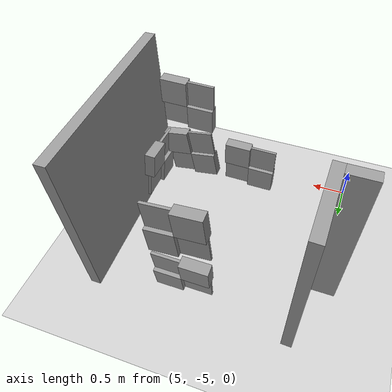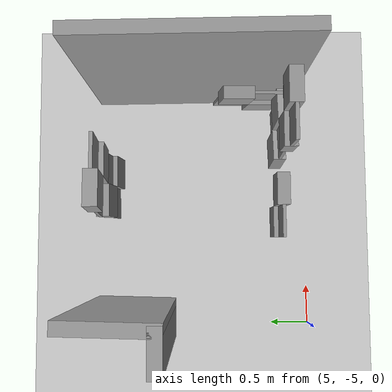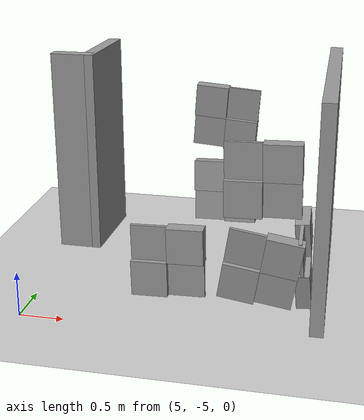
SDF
<sdf version="1.7">
 <world name="default">
  <model name="demo_clean">
   <static>1</static>
   <link name="Wall_15">
    <collision name="Wall_15_Collision">
     <geometry><box><size>2.6816 0.15 2.5</size></box></geometry>
     <pose>0 0 1.25 0 -0 0</pose>
     <surface>
      <friction>
       <ode><mu>1</mu><mu2>1</mu2><fdir1>0 0 0</fdir1><slip1>0</slip1><slip2>0</slip2></ode>
       <torsional>
        <coefficient>1</coefficient>
        <patch_radius>0</patch_radius>
        <surface_radius>0</surface_radius>
        <use_patch_radius>1</use_patch_radius>
        <ode><slip>0</slip></ode>
       </torsional>
      </friction>
      <bounce><restitution_coefficient>0</restitution_coefficient><threshold>1e+06</threshold></bounce>
      <contact>
       <collide_without_contact>0</collide_without_contact>
       <collide_without_contact_bitmask>1</collide_without_contact_bitmask>
       <collide_bitmask>1</collide_bitmask>
       <ode>
        <soft_cfm>0</soft_cfm>
        <soft_erp>0.2</soft_erp>
        <kp>1e+13</kp>
        <kd>1</kd>
        <max_vel>0.01</max_vel>
        <min_depth>0</min_depth>
       </ode>
       <bullet>
        <split_impulse>1</split_impulse>
        <split_impulse_penetration_threshold>-0.01</split_impulse_penetration_threshold>
        <soft_cfm>0</soft_cfm>
        <soft_erp>0.2</soft_erp>
        <kp>1e+13</kp>
        <kd>1</kd>
       </bullet>
      </contact>
     </surface>
    </collision>
    <visual name="Wall_15_Visual">
     <geometry><box><size>2.6816 0.15 2.5</size></box></geometry>
     <material>
      <script><name>Gazebo/Grey</name><uri>file://media/materials/scripts/gazebo.material</uri></script>
      <ambient>1 1 1 1</ambient>
      <shader type="pixel"><normal_map>default</normal_map></shader>
     </material>
     <pose>0 0 1.25 0 -0 0</pose>
    </visual>
    <pose>8.16988 -3.47452 0 0 0 -1.55787</pose>
   </link>
   <link name="Wall_41">
    <collision name="Wall_41_Collision">
     <geometry><box><size>0.5 0.15 2.5</size></box></geometry>
     <pose>0 0 1.25 0 -0 0</pose>
     <surface>
      <friction>
       <ode><mu>1</mu><mu2>1</mu2><fdir1>0 0 0</fdir1><slip1>0</slip1><slip2>0</slip2></ode>
       <torsional>
        <coefficient>1</coefficient>
        <patch_radius>0</patch_radius>
        <surface_radius>0</surface_radius>
        <use_patch_radius>1</use_patch_radius>
        <ode><slip>0</slip></ode>
       </torsional>
      </friction>
      <bounce><restitution_coefficient>0</restitution_coefficient><threshold>1e+06</threshold></bounce>
      <contact>
       <collide_without_contact>0</collide_without_contact>
       <collide_without_contact_bitmask>1</collide_without_contact_bitmask>
       <collide_bitmask>1</collide_bitmask>
       <ode>
        <soft_cfm>0</soft_cfm>
        <soft_erp>0.2</soft_erp>
        <kp>1e+13</kp>
        <kd>1</kd>
        <max_vel>0.01</max_vel>
        <min_depth>0</min_depth>
       </ode>
       <bullet>
        <split_impulse>1</split_impulse>
        <split_impulse_penetration_threshold>-0.01</split_impulse_penetration_threshold>
        <soft_cfm>0</soft_cfm>
        <soft_erp>0.2</soft_erp>
        <kp>1e+13</kp>
        <kd>1</kd>
       </bullet>
      </contact>
     </surface>
    </collision>
    <visual name="Wall_41_Visual">
     <geometry><box><size>0.5 0.15 2.5</size></box></geometry>
     <material>
      <script><name>Gazebo/Grey</name><uri>file://media/materials/scripts/gazebo.material</uri></script>
      <ambient>1 1 1 1</ambient>
      <shader type="pixel"><normal_map>default</normal_map></shader>
     </material>
     <pose>0 0 1.25 0 -0 0</pose>
    </visual>
    <pose>5.06619 -3.11573 0 0 -0 0</pose>
   </link>
   <link name="Wall_42">
    <collision name="Wall_42_Collision">
     <geometry><box><size>1.05905 0.15 2.5</size></box></geometry>
     <pose>0 0 1.25 0 -0 0</pose>
     <surface>
      <friction>
       <ode><mu>1</mu><mu2>1</mu2><fdir1>0 0 0</fdir1><slip1>0</slip1><slip2>0</slip2></ode>
       <torsional>
        <coefficient>1</coefficient>
        <patch_radius>0</patch_radius>
        <surface_radius>0</surface_radius>
        <use_patch_radius>1</use_patch_radius>
        <ode><slip>0</slip></ode>
       </torsional>
      </friction>
      <bounce><restitution_coefficient>0</restitution_coefficient><threshold>1e+06</threshold></bounce>
      <contact>
       <collide_without_contact>0</collide_without_contact>
       <collide_without_contact_bitmask>1</collide_without_contact_bitmask>
       <collide_bitmask>1</collide_bitmask>
       <ode>
        <soft_cfm>0</soft_cfm>
        <soft_erp>0.2</soft_erp>
        <kp>1e+13</kp>
        <kd>1</kd>
        <max_vel>0.01</max_vel>
        <min_depth>0</min_depth>
       </ode>
       <bullet>
        <split_impulse>1</split_impulse>
        <split_impulse_penetration_threshold>-0.01</split_impulse_penetration_threshold>
        <soft_cfm>0</soft_cfm>
        <soft_erp>0.2</soft_erp>
        <kp>1e+13</kp>
        <kd>1</kd>
       </bullet>
      </contact>
     </surface>
    </collision>
    <visual name="Wall_42_Visual">
     <geometry><box><size>1.05905 0.15 2.5</size></box></geometry>
     <material>
      <script><name>Gazebo/Grey</name><uri>file://media/materials/scripts/gazebo.material</uri></script>
      <ambient>1 1 1 1</ambient>
      <shader type="pixel"><normal_map>default</normal_map></shader>
     </material>
     <pose>0 0 1.25 0 -0 0</pose>
    </visual>
    <pose>5.28364 -2.66264 0 0 -0 1.53905</pose>
   </link>
  </model>
  <model name="ground_plane">
   <static>1</static>
   <link name="link">
    <collision name="collision">
     <geometry><plane><normal>0 0 1</normal><size>100 100</size></plane></geometry>
     <surface>
      <contact><collide_bitmask>65535</collide_bitmask></contact>
      <friction><ode><mu>100</mu><mu2>50</mu2></ode></friction>
     </surface>
    </collision>
    <visual name="visual">
     <cast_shadows>0</cast_shadows>
     <geometry><plane><normal>0 0 1</normal><size>100 100</size></plane></geometry>
     <material>
      <script><uri>file://media/materials/scripts/gazebo.material</uri><name>Gazebo/Grey</name></script>
     </material>
    </visual>
   </link>
  </model>
  <model name="wall_slate_5">
   <static>1</static>
   <link name="link_0">
    <inertial><mass>1</mass></inertial>
    <gravity>0</gravity>
    <visual name="visual">
     <pose>0 0.2 0.2 0 -0 0</pose>
     <geometry><box><size>0.16 0.4 0.4</size></box></geometry>
     <material>
      <lighting>1</lighting>
      <script><uri>file://media/materials/scripts/gazebo.material</uri><name>Gazebo/Grey</name></script>
      <shader type="pixel"><normal_map>__default__</normal_map></shader>
      <ambient>0.3 0.3 0.3 1</ambient>
      <diffuse>0.7 0.7 0.7 1</diffuse>
      <specular>0.01 0.01 0.01 1</specular>
      <emissive>0 0 0 1</emissive>
     </material>
    </visual>
    <visual name="ModelPreview_0::link_0::visual_1">
     <pose>0 0.2 -0.2 0 -0 0</pose>
     <geometry><box><size>0.04 0.4 0.4</size></box></geometry>
     <material>
      <lighting>1</lighting>
      <script><uri>file://media/materials/scripts/gazebo.material</uri><name>Gazebo/Grey</name></script>
      <shader type="pixel"><normal_map>__default__</normal_map></shader>
      <ambient>0.3 0.3 0.3 1</ambient>
      <diffuse>0.7 0.7 0.7 1</diffuse>
      <specular>0.01 0.01 0.01 1</specular>
      <emissive>0 0 0 1</emissive>
     </material>
    </visual>
    <visual name="ModelPreview_0::link_0::visual_2">
     <pose>0 -0.2 0.2 0 -0 0</pose>
     <geometry><box><size>0.04 0.4 0.4</size></box></geometry>
     <material>
      <lighting>1</lighting>
      <script><uri>file://media/materials/scripts/gazebo.material</uri><name>Gazebo/Grey</name></script>
      <shader type="pixel"><normal_map>__default__</normal_map></shader>
      <ambient>0.3 0.3 0.3 1</ambient>
      <diffuse>0.7 0.7 0.7 1</diffuse>
      <specular>0.01 0.01 0.01 1</specular>
      <emissive>0 0 0 1</emissive>
     </material>
    </visual>
    <visual name="ModelPreview_0::link_0::visual_3">
     <pose>0 -0.2 -0.2 0 -0 0</pose>
     <geometry><box><size>0.16 0.4 0.4</size></box></geometry>
     <material>
      <lighting>1</lighting>
      <script><uri>file://media/materials/scripts/gazebo.material</uri><name>Gazebo/Grey</name></script>
      <shader type="pixel"><normal_map>__default__</normal_map></shader>
      <ambient>0.3 0.3 0.3 1</ambient>
      <diffuse>0.7 0.7 0.7 1</diffuse>
      <specular>0.01 0.01 0.01 1</specular>
      <emissive>0 0 0 1</emissive>
     </material>
    </visual>
    <collision name="collision_2">
     <pose>0 -0.2 0.2 0 -0 0</pose>
     <geometry><box><size>0.04 0.4 0.4</size></box></geometry>
     <surface>
      <friction>
       <ode><mu>1</mu><mu2>1</mu2><fdir1>0 0 0</fdir1><slip1>0</slip1><slip2>0</slip2></ode>
       <torsional>
        <coefficient>1</coefficient>
        <patch_radius>0</patch_radius>
        <surface_radius>0</surface_radius>
        <use_patch_radius>1</use_patch_radius>
        <ode><slip>0</slip></ode>
       </torsional>
      </friction>
      <bounce><restitution_coefficient>0</restitution_coefficient><threshold>1e+06</threshold></bounce>
      <contact>
       <collide_without_contact>0</collide_without_contact>
       <collide_without_contact_bitmask>1</collide_without_contact_bitmask>
       <collide_bitmask>1</collide_bitmask>
       <ode>
        <soft_cfm>0</soft_cfm>
        <soft_erp>0.2</soft_erp>
        <kp>1e+13</kp>
        <kd>1</kd>
        <max_vel>0.01</max_vel>
        <min_depth>0</min_depth>
       </ode>
       <bullet>
        <split_impulse>1</split_impulse>
        <split_impulse_penetration_threshold>-0.01</split_impulse_penetration_threshold>
        <soft_cfm>0</soft_cfm>
        <soft_erp>0.2</soft_erp>
        <kp>1e+13</kp>
        <kd>1</kd>
       </bullet>
      </contact>
     </surface>
    </collision>
    <collision name="collision_1">
     <pose>0 0.2 -0.2 0 -0 0</pose>
     <geometry><box><size>0.04 0.4 0.4</size></box></geometry>
     <surface>
      <friction>
       <ode><mu>1</mu><mu2>1</mu2><fdir1>0 0 0</fdir1><slip1>0</slip1><slip2>0</slip2></ode>
       <torsional>
        <coefficient>1</coefficient>
        <patch_radius>0</patch_radius>
        <surface_radius>0</surface_radius>
        <use_patch_radius>1</use_patch_radius>
        <ode><slip>0</slip></ode>
       </torsional>
      </friction>
      <bounce><restitution_coefficient>0</restitution_coefficient><threshold>1e+06</threshold></bounce>
      <contact>
       <collide_without_contact>0</collide_without_contact>
       <collide_without_contact_bitmask>1</collide_without_contact_bitmask>
       <collide_bitmask>1</collide_bitmask>
       <ode>
        <soft_cfm>0</soft_cfm>
        <soft_erp>0.2</soft_erp>
        <kp>1e+13</kp>
        <kd>1</kd>
        <max_vel>0.01</max_vel>
        <min_depth>0</min_depth>
       </ode>
       <bullet>
        <split_impulse>1</split_impulse>
        <split_impulse_penetration_threshold>-0.01</split_impulse_penetration_threshold>
        <soft_cfm>0</soft_cfm>
        <soft_erp>0.2</soft_erp>
        <kp>1e+13</kp>
        <kd>1</kd>
       </bullet>
      </contact>
     </surface>
    </collision>
    <collision name="collision_4">
     <pose>0 0.2 0.2 0 -0 0</pose>
     <geometry><box><size>0.16 0.4 0.4</size></box></geometry>
     <surface>
      <friction>
       <ode><mu>1</mu><mu2>1</mu2><fdir1>0 0 0</fdir1><slip1>0</slip1><slip2>0</slip2></ode>
       <torsional>
        <coefficient>1</coefficient>
        <patch_radius>0</patch_radius>
        <surface_radius>0</surface_radius>
        <use_patch_radius>1</use_patch_radius>
        <ode><slip>0</slip></ode>
       </torsional>
      </friction>
      <bounce><restitution_coefficient>0</restitution_coefficient><threshold>1e+06</threshold></bounce>
      <contact>
       <collide_without_contact>0</collide_without_contact>
       <collide_without_contact_bitmask>1</collide_without_contact_bitmask>
       <collide_bitmask>1</collide_bitmask>
       <ode>
        <soft_cfm>0</soft_cfm>
        <soft_erp>0.2</soft_erp>
        <kp>1e+13</kp>
        <kd>1</kd>
        <max_vel>0.01</max_vel>
        <min_depth>0</min_depth>
       </ode>
       <bullet>
        <split_impulse>1</split_impulse>
        <split_impulse_penetration_threshold>-0.01</split_impulse_penetration_threshold>
        <soft_cfm>0</soft_cfm>
        <soft_erp>0.2</soft_erp>
        <kp>1e+13</kp>
        <kd>1</kd>
       </bullet>
      </contact>
     </surface>
    </collision>
    <collision name="collision_3">
     <pose>0 -0.2 -0.2 0 -0 0</pose>
     <geometry><box><size>0.16 0.4 0.4</size></box></geometry>
     <surface>
      <friction>
       <ode><mu>1</mu><mu2>1</mu2><fdir1>0 0 0</fdir1><slip1>0</slip1><slip2>0</slip2></ode>
       <torsional>
        <coefficient>1</coefficient>
        <patch_radius>0</patch_radius>
        <surface_radius>0</surface_radius>
        <use_patch_radius>1</use_patch_radius>
        <ode><slip>0</slip></ode>
       </torsional>
      </friction>
      <bounce><restitution_coefficient>0</restitution_coefficient><threshold>1e+06</threshold></bounce>
      <contact>
       <collide_without_contact>0</collide_without_contact>
       <collide_without_contact_bitmask>1</collide_without_contact_bitmask>
       <collide_bitmask>1</collide_bitmask>
       <ode>
        <soft_cfm>0</soft_cfm>
        <soft_erp>0.2</soft_erp>
        <kp>1e+13</kp>
        <kd>1</kd>
        <max_vel>0.01</max_vel>
        <min_depth>0</min_depth>
       </ode>
       <bullet>
        <split_impulse>1</split_impulse>
        <split_impulse_penetration_threshold>-0.01</split_impulse_penetration_threshold>
        <soft_cfm>0</soft_cfm>
        <soft_erp>0.2</soft_erp>
        <kp>1e+13</kp>
        <kd>1</kd>
       </bullet>
      </contact>
     </surface>
    </collision>
   </link>
   <pose>7.98585 -4.1722 0.6 0.14 -0.08 0.01783</pose>
  </model>
  <model name="wall_slate_17">
   <static>1</static>
   <link name="link_0">
    <inertial><mass>1</mass></inertial>
    <gravity>0</gravity>
    <visual name="visual">
     <pose>0 0.2 0.2 0 -0 0</pose>
     <geometry><box><size>0.16 0.4 0.4</size></box></geometry>
     <material>
      <lighting>1</lighting>
      <script><uri>file://media/materials/scripts/gazebo.material</uri><name>Gazebo/Grey</name></script>
      <shader type="pixel"><normal_map>__default__</normal_map></shader>
      <ambient>0.3 0.3 0.3 1</ambient>
      <diffuse>0.7 0.7 0.7 1</diffuse>
      <specular>0.01 0.01 0.01 1</specular>
      <emissive>0 0 0 1</emissive>
     </material>
    </visual>
    <visual name="ModelPreview_0::link_0::visual_1">
     <pose>0 0.2 -0.2 0 -0 0</pose>
     <geometry><box><size>0.04 0.4 0.4</size></box></geometry>
     <material>
      <lighting>1</lighting>
      <script><uri>file://media/materials/scripts/gazebo.material</uri><name>Gazebo/Grey</name></script>
      <shader type="pixel"><normal_map>__default__</normal_map></shader>
      <ambient>0.3 0.3 0.3 1</ambient>
      <diffuse>0.7 0.7 0.7 1</diffuse>
      <specular>0.01 0.01 0.01 1</specular>
      <emissive>0 0 0 1</emissive>
     </material>
    </visual>
    <visual name="ModelPreview_0::link_0::visual_2">
     <pose>0 -0.2 0.2 0 -0 0</pose>
     <geometry><box><size>0.04 0.4 0.4</size></box></geometry>
     <material>
      <lighting>1</lighting>
      <script><uri>file://media/materials/scripts/gazebo.material</uri><name>Gazebo/Grey</name></script>
      <shader type="pixel"><normal_map>__default__</normal_map></shader>
      <ambient>0.3 0.3 0.3 1</ambient>
      <diffuse>0.7 0.7 0.7 1</diffuse>
      <specular>0.01 0.01 0.01 1</specular>
      <emissive>0 0 0 1</emissive>
     </material>
    </visual>
    <visual name="ModelPreview_0::link_0::visual_3">
     <pose>0 -0.2 -0.2 0 -0 0</pose>
     <geometry><box><size>0.16 0.4 0.4</size></box></geometry>
     <material>
      <lighting>1</lighting>
      <script><uri>file://media/materials/scripts/gazebo.material</uri><name>Gazebo/Grey</name></script>
      <shader type="pixel"><normal_map>__default__</normal_map></shader>
      <ambient>0.3 0.3 0.3 1</ambient>
      <diffuse>0.7 0.7 0.7 1</diffuse>
      <specular>0.01 0.01 0.01 1</specular>
      <emissive>0 0 0 1</emissive>
     </material>
    </visual>
    <collision name="collision_2">
     <pose>0 -0.2 0.2 0 -0 0</pose>
     <geometry><box><size>0.04 0.4 0.4</size></box></geometry>
     <surface>
      <friction>
       <ode><mu>1</mu><mu2>1</mu2><fdir1>0 0 0</fdir1><slip1>0</slip1><slip2>0</slip2></ode>
       <torsional>
        <coefficient>1</coefficient>
        <patch_radius>0</patch_radius>
        <surface_radius>0</surface_radius>
        <use_patch_radius>1</use_patch_radius>
        <ode><slip>0</slip></ode>
       </torsional>
      </friction>
      <bounce><restitution_coefficient>0</restitution_coefficient><threshold>1e+06</threshold></bounce>
      <contact>
       <collide_without_contact>0</collide_without_contact>
       <collide_without_contact_bitmask>1</collide_without_contact_bitmask>
       <collide_bitmask>1</collide_bitmask>
       <ode>
        <soft_cfm>0</soft_cfm>
        <soft_erp>0.2</soft_erp>
        <kp>1e+13</kp>
        <kd>1</kd>
        <max_vel>0.01</max_vel>
        <min_depth>0</min_depth>
       </ode>
       <bullet>
        <split_impulse>1</split_impulse>
        <split_impulse_penetration_threshold>-0.01</split_impulse_penetration_threshold>
        <soft_cfm>0</soft_cfm>
        <soft_erp>0.2</soft_erp>
        <kp>1e+13</kp>
        <kd>1</kd>
       </bullet>
      </contact>
     </surface>
    </collision>
    <collision name="collision_1">
     <pose>0 0.2 -0.2 0 -0 0</pose>
     <geometry><box><size>0.04 0.4 0.4</size></box></geometry>
     <surface>
      <friction>
       <ode><mu>1</mu><mu2>1</mu2><fdir1>0 0 0</fdir1><slip1>0</slip1><slip2>0</slip2></ode>
       <torsional>
        <coefficient>1</coefficient>
        <patch_radius>0</patch_radius>
        <surface_radius>0</surface_radius>
        <use_patch_radius>1</use_patch_radius>
        <ode><slip>0</slip></ode>
       </torsional>
      </friction>
      <bounce><restitution_coefficient>0</restitution_coefficient><threshold>1e+06</threshold></bounce>
      <contact>
       <collide_without_contact>0</collide_without_contact>
       <collide_without_contact_bitmask>1</collide_without_contact_bitmask>
       <collide_bitmask>1</collide_bitmask>
       <ode>
        <soft_cfm>0</soft_cfm>
        <soft_erp>0.2</soft_erp>
        <kp>1e+13</kp>
        <kd>1</kd>
        <max_vel>0.01</max_vel>
        <min_depth>0</min_depth>
       </ode>
       <bullet>
        <split_impulse>1</split_impulse>
        <split_impulse_penetration_threshold>-0.01</split_impulse_penetration_threshold>
        <soft_cfm>0</soft_cfm>
        <soft_erp>0.2</soft_erp>
        <kp>1e+13</kp>
        <kd>1</kd>
       </bullet>
      </contact>
     </surface>
    </collision>
    <collision name="collision_4">
     <pose>0 0.2 0.2 0 -0 0</pose>
     <geometry><box><size>0.16 0.4 0.4</size></box></geometry>
     <surface>
      <friction>
       <ode><mu>1</mu><mu2>1</mu2><fdir1>0 0 0</fdir1><slip1>0</slip1><slip2>0</slip2></ode>
       <torsional>
        <coefficient>1</coefficient>
        <patch_radius>0</patch_radius>
        <surface_radius>0</surface_radius>
        <use_patch_radius>1</use_patch_radius>
        <ode><slip>0</slip></ode>
       </torsional>
      </friction>
      <bounce><restitution_coefficient>0</restitution_coefficient><threshold>1e+06</threshold></bounce>
      <contact>
       <collide_without_contact>0</collide_without_contact>
       <collide_without_contact_bitmask>1</collide_without_contact_bitmask>
       <collide_bitmask>1</collide_bitmask>
       <ode>
        <soft_cfm>0</soft_cfm>
        <soft_erp>0.2</soft_erp>
        <kp>1e+13</kp>
        <kd>1</kd>
        <max_vel>0.01</max_vel>
        <min_depth>0</min_depth>
       </ode>
       <bullet>
        <split_impulse>1</split_impulse>
        <split_impulse_penetration_threshold>-0.01</split_impulse_penetration_threshold>
        <soft_cfm>0</soft_cfm>
        <soft_erp>0.2</soft_erp>
        <kp>1e+13</kp>
        <kd>1</kd>
       </bullet>
      </contact>
     </surface>
    </collision>
    <collision name="collision_3">
     <pose>0 -0.2 -0.2 0 -0 0</pose>
     <geometry><box><size>0.16 0.4 0.4</size></box></geometry>
     <surface>
      <friction>
       <ode><mu>1</mu><mu2>1</mu2><fdir1>0 0 0</fdir1><slip1>0</slip1><slip2>0</slip2></ode>
       <torsional>
        <coefficient>1</coefficient>
        <patch_radius>0</patch_radius>
        <surface_radius>0</surface_radius>
        <use_patch_radius>1</use_patch_radius>
        <ode><slip>0</slip></ode>
       </torsional>
      </friction>
      <bounce><restitution_coefficient>0</restitution_coefficient><threshold>1e+06</threshold></bounce>
      <contact>
       <collide_without_contact>0</collide_without_contact>
       <collide_without_contact_bitmask>1</collide_without_contact_bitmask>
       <collide_bitmask>1</collide_bitmask>
       <ode>
        <soft_cfm>0</soft_cfm>
        <soft_erp>0.2</soft_erp>
        <kp>1e+13</kp>
        <kd>1</kd>
        <max_vel>0.01</max_vel>
        <min_depth>0</min_depth>
       </ode>
       <bullet>
        <split_impulse>1</split_impulse>
        <split_impulse_penetration_threshold>-0.01</split_impulse_penetration_threshold>
        <soft_cfm>0</soft_cfm>
        <soft_erp>0.2</soft_erp>
        <kp>1e+13</kp>
        <kd>1</kd>
       </bullet>
      </contact>
     </surface>
    </collision>
   </link>
   <pose>7.56125 -4.5652 0.6 -0.16 0.06 -1.5659</pose>
  </model>
  <model name="wall_slate_27">
   <static>1</static>
   <link name="link_0">
    <inertial><mass>1</mass></inertial>
    <gravity>0</gravity>
    <visual name="visual">
     <pose>0 0.2 0.2 0 -0 0</pose>
     <geometry><box><size>0.16 0.4 0.4</size></box></geometry>
     <material>
      <lighting>1</lighting>
      <script><uri>file://media/materials/scripts/gazebo.material</uri><name>Gazebo/Grey</name></script>
      <shader type="pixel"><normal_map>__default__</normal_map></shader>
      <ambient>0.3 0.3 0.3 1</ambient>
      <diffuse>0.7 0.7 0.7 1</diffuse>
      <specular>0.01 0.01 0.01 1</specular>
      <emissive>0 0 0 1</emissive>
     </material>
    </visual>
    <visual name="ModelPreview_0::link_0::visual_1">
     <pose>0 0.2 -0.2 0 -0 0</pose>
     <geometry><box><size>0.04 0.4 0.4</size></box></geometry>
     <material>
      <lighting>1</lighting>
      <script><uri>file://media/materials/scripts/gazebo.material</uri><name>Gazebo/Grey</name></script>
      <shader type="pixel"><normal_map>__default__</normal_map></shader>
      <ambient>0.3 0.3 0.3 1</ambient>
      <diffuse>0.7 0.7 0.7 1</diffuse>
      <specular>0.01 0.01 0.01 1</specular>
      <emissive>0 0 0 1</emissive>
     </material>
    </visual>
    <visual name="ModelPreview_0::link_0::visual_2">
     <pose>0 -0.2 0.2 0 -0 0</pose>
     <geometry><box><size>0.04 0.4 0.4</size></box></geometry>
     <material>
      <lighting>1</lighting>
      <script><uri>file://media/materials/scripts/gazebo.material</uri><name>Gazebo/Grey</name></script>
      <shader type="pixel"><normal_map>__default__</normal_map></shader>
      <ambient>0.3 0.3 0.3 1</ambient>
      <diffuse>0.7 0.7 0.7 1</diffuse>
      <specular>0.01 0.01 0.01 1</specular>
      <emissive>0 0 0 1</emissive>
     </material>
    </visual>
    <visual name="ModelPreview_0::link_0::visual_3">
     <pose>0 -0.2 -0.2 0 -0 0</pose>
     <geometry><box><size>0.16 0.4 0.4</size></box></geometry>
     <material>
      <lighting>1</lighting>
      <script><uri>file://media/materials/scripts/gazebo.material</uri><name>Gazebo/Grey</name></script>
      <shader type="pixel"><normal_map>__default__</normal_map></shader>
      <ambient>0.3 0.3 0.3 1</ambient>
      <diffuse>0.7 0.7 0.7 1</diffuse>
      <specular>0.01 0.01 0.01 1</specular>
      <emissive>0 0 0 1</emissive>
     </material>
    </visual>
    <collision name="collision_2">
     <pose>0 -0.2 0.2 0 -0 0</pose>
     <geometry><box><size>0.04 0.4 0.4</size></box></geometry>
     <surface>
      <friction>
       <ode><mu>1</mu><mu2>1</mu2><fdir1>0 0 0</fdir1><slip1>0</slip1><slip2>0</slip2></ode>
       <torsional>
        <coefficient>1</coefficient>
        <patch_radius>0</patch_radius>
        <surface_radius>0</surface_radius>
        <use_patch_radius>1</use_patch_radius>
        <ode><slip>0</slip></ode>
       </torsional>
      </friction>
      <bounce><restitution_coefficient>0</restitution_coefficient><threshold>1e+06</threshold></bounce>
      <contact>
       <collide_without_contact>0</collide_without_contact>
       <collide_without_contact_bitmask>1</collide_without_contact_bitmask>
       <collide_bitmask>1</collide_bitmask>
       <ode>
        <soft_cfm>0</soft_cfm>
        <soft_erp>0.2</soft_erp>
        <kp>1e+13</kp>
        <kd>1</kd>
        <max_vel>0.01</max_vel>
        <min_depth>0</min_depth>
       </ode>
       <bullet>
        <split_impulse>1</split_impulse>
        <split_impulse_penetration_threshold>-0.01</split_impulse_penetration_threshold>
        <soft_cfm>0</soft_cfm>
        <soft_erp>0.2</soft_erp>
        <kp>1e+13</kp>
        <kd>1</kd>
       </bullet>
      </contact>
     </surface>
    </collision>
    <collision name="collision_1">
     <pose>0 0.2 -0.2 0 -0 0</pose>
     <geometry><box><size>0.04 0.4 0.4</size></box></geometry>
     <surface>
      <friction>
       <ode><mu>1</mu><mu2>1</mu2><fdir1>0 0 0</fdir1><slip1>0</slip1><slip2>0</slip2></ode>
       <torsional>
        <coefficient>1</coefficient>
        <patch_radius>0</patch_radius>
        <surface_radius>0</surface_radius>
        <use_patch_radius>1</use_patch_radius>
        <ode><slip>0</slip></ode>
       </torsional>
      </friction>
      <bounce><restitution_coefficient>0</restitution_coefficient><threshold>1e+06</threshold></bounce>
      <contact>
       <collide_without_contact>0</collide_without_contact>
       <collide_without_contact_bitmask>1</collide_without_contact_bitmask>
       <collide_bitmask>1</collide_bitmask>
       <ode>
        <soft_cfm>0</soft_cfm>
        <soft_erp>0.2</soft_erp>
        <kp>1e+13</kp>
        <kd>1</kd>
        <max_vel>0.01</max_vel>
        <min_depth>0</min_depth>
       </ode>
       <bullet>
        <split_impulse>1</split_impulse>
        <split_impulse_penetration_threshold>-0.01</split_impulse_penetration_threshold>
        <soft_cfm>0</soft_cfm>
        <soft_erp>0.2</soft_erp>
        <kp>1e+13</kp>
        <kd>1</kd>
       </bullet>
      </contact>
     </surface>
    </collision>
    <collision name="collision_4">
     <pose>0 0.2 0.2 0 -0 0</pose>
     <geometry><box><size>0.16 0.4 0.4</size></box></geometry>
     <surface>
      <friction>
       <ode><mu>1</mu><mu2>1</mu2><fdir1>0 0 0</fdir1><slip1>0</slip1><slip2>0</slip2></ode>
       <torsional>
        <coefficient>1</coefficient>
        <patch_radius>0</patch_radius>
        <surface_radius>0</surface_radius>
        <use_patch_radius>1</use_patch_radius>
        <ode><slip>0</slip></ode>
       </torsional>
      </friction>
      <bounce><restitution_coefficient>0</restitution_coefficient><threshold>1e+06</threshold></bounce>
      <contact>
       <collide_without_contact>0</collide_without_contact>
       <collide_without_contact_bitmask>1</collide_without_contact_bitmask>
       <collide_bitmask>1</collide_bitmask>
       <ode>
        <soft_cfm>0</soft_cfm>
        <soft_erp>0.2</soft_erp>
        <kp>1e+13</kp>
        <kd>1</kd>
        <max_vel>0.01</max_vel>
        <min_depth>0</min_depth>
       </ode>
       <bullet>
        <split_impulse>1</split_impulse>
        <split_impulse_penetration_threshold>-0.01</split_impulse_penetration_threshold>
        <soft_cfm>0</soft_cfm>
        <soft_erp>0.2</soft_erp>
        <kp>1e+13</kp>
        <kd>1</kd>
       </bullet>
      </contact>
     </surface>
    </collision>
    <collision name="collision_3">
     <pose>0 -0.2 -0.2 0 -0 0</pose>
     <geometry><box><size>0.16 0.4 0.4</size></box></geometry>
     <surface>
      <friction>
       <ode><mu>1</mu><mu2>1</mu2><fdir1>0 0 0</fdir1><slip1>0</slip1><slip2>0</slip2></ode>
       <torsional>
        <coefficient>1</coefficient>
        <patch_radius>0</patch_radius>
        <surface_radius>0</surface_radius>
        <use_patch_radius>1</use_patch_radius>
        <ode><slip>0</slip></ode>
       </torsional>
      </friction>
      <bounce><restitution_coefficient>0</restitution_coefficient><threshold>1e+06</threshold></bounce>
      <contact>
       <collide_without_contact>0</collide_without_contact>
       <collide_without_contact_bitmask>1</collide_without_contact_bitmask>
       <collide_bitmask>1</collide_bitmask>
       <ode>
        <soft_cfm>0</soft_cfm>
        <soft_erp>0.2</soft_erp>
        <kp>1e+13</kp>
        <kd>1</kd>
        <max_vel>0.01</max_vel>
        <min_depth>0</min_depth>
       </ode>
       <bullet>
        <split_impulse>1</split_impulse>
        <split_impulse_penetration_threshold>-0.01</split_impulse_penetration_threshold>
        <soft_cfm>0</soft_cfm>
        <soft_erp>0.2</soft_erp>
        <kp>1e+13</kp>
        <kd>1</kd>
       </bullet>
      </contact>
     </surface>
    </collision>
   </link>
   <pose>7.56125 -4.5652 1.6 0.02 -0 -1.5659</pose>
  </model>
  <model name="wall_slate_44">
   <static>1</static>
   <link name="link_0">
    <inertial><mass>1</mass></inertial>
    <gravity>0</gravity>
    <visual name="visual">
     <pose>0 0.2 0.2 0 -0 0</pose>
     <geometry><box><size>0.16 0.4 0.4</size></box></geometry>
     <material>
      <lighting>1</lighting>
      <script><uri>file://media/materials/scripts/gazebo.material</uri><name>Gazebo/Grey</name></script>
      <shader type="pixel"><normal_map>__default__</normal_map></shader>
      <ambient>0.3 0.3 0.3 1</ambient>
      <diffuse>0.7 0.7 0.7 1</diffuse>
      <specular>0.01 0.01 0.01 1</specular>
      <emissive>0 0 0 1</emissive>
     </material>
    </visual>
    <visual name="ModelPreview_0::link_0::visual_1">
     <pose>0 0.2 -0.2 0 -0 0</pose>
     <geometry><box><size>0.04 0.4 0.4</size></box></geometry>
     <material>
      <lighting>1</lighting>
      <script><uri>file://media/materials/scripts/gazebo.material</uri><name>Gazebo/Grey</name></script>
      <shader type="pixel"><normal_map>__default__</normal_map></shader>
      <ambient>0.3 0.3 0.3 1</ambient>
      <diffuse>0.7 0.7 0.7 1</diffuse>
      <specular>0.01 0.01 0.01 1</specular>
      <emissive>0 0 0 1</emissive>
     </material>
    </visual>
    <visual name="ModelPreview_0::link_0::visual_2">
     <pose>0 -0.2 0.2 0 -0 0</pose>
     <geometry><box><size>0.04 0.4 0.4</size></box></geometry>
     <material>
      <lighting>1</lighting>
      <script><uri>file://media/materials/scripts/gazebo.material</uri><name>Gazebo/Grey</name></script>
      <shader type="pixel"><normal_map>__default__</normal_map></shader>
      <ambient>0.3 0.3 0.3 1</ambient>
      <diffuse>0.7 0.7 0.7 1</diffuse>
      <specular>0.01 0.01 0.01 1</specular>
      <emissive>0 0 0 1</emissive>
     </material>
    </visual>
    <visual name="ModelPreview_0::link_0::visual_3">
     <pose>0 -0.2 -0.2 0 -0 0</pose>
     <geometry><box><size>0.16 0.4 0.4</size></box></geometry>
     <material>
      <lighting>1</lighting>
      <script><uri>file://media/materials/scripts/gazebo.material</uri><name>Gazebo/Grey</name></script>
      <shader type="pixel"><normal_map>__default__</normal_map></shader>
      <ambient>0.3 0.3 0.3 1</ambient>
      <diffuse>0.7 0.7 0.7 1</diffuse>
      <specular>0.01 0.01 0.01 1</specular>
      <emissive>0 0 0 1</emissive>
     </material>
    </visual>
    <collision name="collision_2">
     <pose>0 -0.2 0.2 0 -0 0</pose>
     <geometry><box><size>0.04 0.4 0.4</size></box></geometry>
     <surface>
      <friction>
       <ode><mu>1</mu><mu2>1</mu2><fdir1>0 0 0</fdir1><slip1>0</slip1><slip2>0</slip2></ode>
       <torsional>
        <coefficient>1</coefficient>
        <patch_radius>0</patch_radius>
        <surface_radius>0</surface_radius>
        <use_patch_radius>1</use_patch_radius>
        <ode><slip>0</slip></ode>
       </torsional>
      </friction>
      <bounce><restitution_coefficient>0</restitution_coefficient><threshold>1e+06</threshold></bounce>
      <contact>
       <collide_without_contact>0</collide_without_contact>
       <collide_without_contact_bitmask>1</collide_without_contact_bitmask>
       <collide_bitmask>1</collide_bitmask>
       <ode>
        <soft_cfm>0</soft_cfm>
        <soft_erp>0.2</soft_erp>
        <kp>1e+13</kp>
        <kd>1</kd>
        <max_vel>0.01</max_vel>
        <min_depth>0</min_depth>
       </ode>
       <bullet>
        <split_impulse>1</split_impulse>
        <split_impulse_penetration_threshold>-0.01</split_impulse_penetration_threshold>
        <soft_cfm>0</soft_cfm>
        <soft_erp>0.2</soft_erp>
        <kp>1e+13</kp>
        <kd>1</kd>
       </bullet>
      </contact>
     </surface>
    </collision>
    <collision name="collision_1">
     <pose>0 0.2 -0.2 0 -0 0</pose>
     <geometry><box><size>0.04 0.4 0.4</size></box></geometry>
     <surface>
      <friction>
       <ode><mu>1</mu><mu2>1</mu2><fdir1>0 0 0</fdir1><slip1>0</slip1><slip2>0</slip2></ode>
       <torsional>
        <coefficient>1</coefficient>
        <patch_radius>0</patch_radius>
        <surface_radius>0</surface_radius>
        <use_patch_radius>1</use_patch_radius>
        <ode><slip>0</slip></ode>
       </torsional>
      </friction>
      <bounce><restitution_coefficient>0</restitution_coefficient><threshold>1e+06</threshold></bounce>
      <contact>
       <collide_without_contact>0</collide_without_contact>
       <collide_without_contact_bitmask>1</collide_without_contact_bitmask>
       <collide_bitmask>1</collide_bitmask>
       <ode>
        <soft_cfm>0</soft_cfm>
        <soft_erp>0.2</soft_erp>
        <kp>1e+13</kp>
        <kd>1</kd>
        <max_vel>0.01</max_vel>
        <min_depth>0</min_depth>
       </ode>
       <bullet>
        <split_impulse>1</split_impulse>
        <split_impulse_penetration_threshold>-0.01</split_impulse_penetration_threshold>
        <soft_cfm>0</soft_cfm>
        <soft_erp>0.2</soft_erp>
        <kp>1e+13</kp>
        <kd>1</kd>
       </bullet>
      </contact>
     </surface>
    </collision>
    <collision name="collision_4">
     <pose>0 0.2 0.2 0 -0 0</pose>
     <geometry><box><size>0.16 0.4 0.4</size></box></geometry>
     <surface>
      <friction>
       <ode><mu>1</mu><mu2>1</mu2><fdir1>0 0 0</fdir1><slip1>0</slip1><slip2>0</slip2></ode>
       <torsional>
        <coefficient>1</coefficient>
        <patch_radius>0</patch_radius>
        <surface_radius>0</surface_radius>
        <use_patch_radius>1</use_patch_radius>
        <ode><slip>0</slip></ode>
       </torsional>
      </friction>
      <bounce><restitution_coefficient>0</restitution_coefficient><threshold>1e+06</threshold></bounce>
      <contact>
       <collide_without_contact>0</collide_without_contact>
       <collide_without_contact_bitmask>1</collide_without_contact_bitmask>
       <collide_bitmask>1</collide_bitmask>
       <ode>
        <soft_cfm>0</soft_cfm>
        <soft_erp>0.2</soft_erp>
        <kp>1e+13</kp>
        <kd>1</kd>
        <max_vel>0.01</max_vel>
        <min_depth>0</min_depth>
       </ode>
       <bullet>
        <split_impulse>1</split_impulse>
        <split_impulse_penetration_threshold>-0.01</split_impulse_penetration_threshold>
        <soft_cfm>0</soft_cfm>
        <soft_erp>0.2</soft_erp>
        <kp>1e+13</kp>
        <kd>1</kd>
       </bullet>
      </contact>
     </surface>
    </collision>
    <collision name="collision_3">
     <pose>0 -0.2 -0.2 0 -0 0</pose>
     <geometry><box><size>0.16 0.4 0.4</size></box></geometry>
     <surface>
      <friction>
       <ode><mu>1</mu><mu2>1</mu2><fdir1>0 0 0</fdir1><slip1>0</slip1><slip2>0</slip2></ode>
       <torsional>
        <coefficient>1</coefficient>
        <patch_radius>0</patch_radius>
        <surface_radius>0</surface_radius>
        <use_patch_radius>1</use_patch_radius>
        <ode><slip>0</slip></ode>
       </torsional>
      </friction>
      <bounce><restitution_coefficient>0</restitution_coefficient><threshold>1e+06</threshold></bounce>
      <contact>
       <collide_without_contact>0</collide_without_contact>
       <collide_without_contact_bitmask>1</collide_without_contact_bitmask>
       <collide_bitmask>1</collide_bitmask>
       <ode>
        <soft_cfm>0</soft_cfm>
        <soft_erp>0.2</soft_erp>
        <kp>1e+13</kp>
        <kd>1</kd>
        <max_vel>0.01</max_vel>
        <min_depth>0</min_depth>
       </ode>
       <bullet>
        <split_impulse>1</split_impulse>
        <split_impulse_penetration_threshold>-0.01</split_impulse_penetration_threshold>
        <soft_cfm>0</soft_cfm>
        <soft_erp>0.2</soft_erp>
        <kp>1e+13</kp>
        <kd>1</kd>
       </bullet>
      </contact>
     </surface>
    </collision>
   </link>
   <pose>6.56125 -4.5652 0.6 0.02 -0 -1.5659</pose>
  </model>
  <model name="wall_slate_79">
   <static>1</static>
   <link name="link_0">
    <inertial><mass>1</mass></inertial>
    <gravity>0</gravity>
    <visual name="visual">
     <pose>0 0.2 0.2 0 -0 0</pose>
     <geometry><box><size>0.16 0.4 0.4</size></box></geometry>
     <material>
      <lighting>1</lighting>
      <script><uri>file://media/materials/scripts/gazebo.material</uri><name>Gazebo/Grey</name></script>
      <shader type="pixel"><normal_map>__default__</normal_map></shader>
      <ambient>0.3 0.3 0.3 1</ambient>
      <diffuse>0.7 0.7 0.7 1</diffuse>
      <specular>0.01 0.01 0.01 1</specular>
      <emissive>0 0 0 1</emissive>
     </material>
    </visual>
    <visual name="ModelPreview_0::link_0::visual_1">
     <pose>0 0.2 -0.2 0 -0 0</pose>
     <geometry><box><size>0.04 0.4 0.4</size></box></geometry>
     <material>
      <lighting>1</lighting>
      <script><uri>file://media/materials/scripts/gazebo.material</uri><name>Gazebo/Grey</name></script>
      <shader type="pixel"><normal_map>__default__</normal_map></shader>
      <ambient>0.3 0.3 0.3 1</ambient>
      <diffuse>0.7 0.7 0.7 1</diffuse>
      <specular>0.01 0.01 0.01 1</specular>
      <emissive>0 0 0 1</emissive>
     </material>
    </visual>
    <visual name="ModelPreview_0::link_0::visual_2">
     <pose>0 -0.2 0.2 0 -0 0</pose>
     <geometry><box><size>0.04 0.4 0.4</size></box></geometry>
     <material>
      <lighting>1</lighting>
      <script><uri>file://media/materials/scripts/gazebo.material</uri><name>Gazebo/Grey</name></script>
      <shader type="pixel"><normal_map>__default__</normal_map></shader>
      <ambient>0.3 0.3 0.3 1</ambient>
      <diffuse>0.7 0.7 0.7 1</diffuse>
      <specular>0.01 0.01 0.01 1</specular>
      <emissive>0 0 0 1</emissive>
     </material>
    </visual>
    <visual name="ModelPreview_0::link_0::visual_3">
     <pose>0 -0.2 -0.2 0 -0 0</pose>
     <geometry><box><size>0.16 0.4 0.4</size></box></geometry>
     <material>
      <lighting>1</lighting>
      <script><uri>file://media/materials/scripts/gazebo.material</uri><name>Gazebo/Grey</name></script>
      <shader type="pixel"><normal_map>__default__</normal_map></shader>
      <ambient>0.3 0.3 0.3 1</ambient>
      <diffuse>0.7 0.7 0.7 1</diffuse>
      <specular>0.01 0.01 0.01 1</specular>
      <emissive>0 0 0 1</emissive>
     </material>
    </visual>
    <collision name="collision_2">
     <pose>0 -0.2 0.2 0 -0 0</pose>
     <geometry><box><size>0.04 0.4 0.4</size></box></geometry>
     <surface>
      <friction>
       <ode><mu>1</mu><mu2>1</mu2><fdir1>0 0 0</fdir1><slip1>0</slip1><slip2>0</slip2></ode>
       <torsional>
        <coefficient>1</coefficient>
        <patch_radius>0</patch_radius>
        <surface_radius>0</surface_radius>
        <use_patch_radius>1</use_patch_radius>
        <ode><slip>0</slip></ode>
       </torsional>
      </friction>
      <bounce><restitution_coefficient>0</restitution_coefficient><threshold>1e+06</threshold></bounce>
      <contact>
       <collide_without_contact>0</collide_without_contact>
       <collide_without_contact_bitmask>1</collide_without_contact_bitmask>
       <collide_bitmask>1</collide_bitmask>
       <ode>
        <soft_cfm>0</soft_cfm>
        <soft_erp>0.2</soft_erp>
        <kp>1e+13</kp>
        <kd>1</kd>
        <max_vel>0.01</max_vel>
        <min_depth>0</min_depth>
       </ode>
       <bullet>
        <split_impulse>1</split_impulse>
        <split_impulse_penetration_threshold>-0.01</split_impulse_penetration_threshold>
        <soft_cfm>0</soft_cfm>
        <soft_erp>0.2</soft_erp>
        <kp>1e+13</kp>
        <kd>1</kd>
       </bullet>
      </contact>
     </surface>
    </collision>
    <collision name="collision_1">
     <pose>0 0.2 -0.2 0 -0 0</pose>
     <geometry><box><size>0.04 0.4 0.4</size></box></geometry>
     <surface>
      <friction>
       <ode><mu>1</mu><mu2>1</mu2><fdir1>0 0 0</fdir1><slip1>0</slip1><slip2>0</slip2></ode>
       <torsional>
        <coefficient>1</coefficient>
        <patch_radius>0</patch_radius>
        <surface_radius>0</surface_radius>
        <use_patch_radius>1</use_patch_radius>
        <ode><slip>0</slip></ode>
       </torsional>
      </friction>
      <bounce><restitution_coefficient>0</restitution_coefficient><threshold>1e+06</threshold></bounce>
      <contact>
       <collide_without_contact>0</collide_without_contact>
       <collide_without_contact_bitmask>1</collide_without_contact_bitmask>
       <collide_bitmask>1</collide_bitmask>
       <ode>
        <soft_cfm>0</soft_cfm>
        <soft_erp>0.2</soft_erp>
        <kp>1e+13</kp>
        <kd>1</kd>
        <max_vel>0.01</max_vel>
        <min_depth>0</min_depth>
       </ode>
       <bullet>
        <split_impulse>1</split_impulse>
        <split_impulse_penetration_threshold>-0.01</split_impulse_penetration_threshold>
        <soft_cfm>0</soft_cfm>
        <soft_erp>0.2</soft_erp>
        <kp>1e+13</kp>
        <kd>1</kd>
       </bullet>
      </contact>
     </surface>
    </collision>
    <collision name="collision_4">
     <pose>0 0.2 0.2 0 -0 0</pose>
     <geometry><box><size>0.16 0.4 0.4</size></box></geometry>
     <surface>
      <friction>
       <ode><mu>1</mu><mu2>1</mu2><fdir1>0 0 0</fdir1><slip1>0</slip1><slip2>0</slip2></ode>
       <torsional>
        <coefficient>1</coefficient>
        <patch_radius>0</patch_radius>
        <surface_radius>0</surface_radius>
        <use_patch_radius>1</use_patch_radius>
        <ode><slip>0</slip></ode>
       </torsional>
      </friction>
      <bounce><restitution_coefficient>0</restitution_coefficient><threshold>1e+06</threshold></bounce>
      <contact>
       <collide_without_contact>0</collide_without_contact>
       <collide_without_contact_bitmask>1</collide_without_contact_bitmask>
       <collide_bitmask>1</collide_bitmask>
       <ode>
        <soft_cfm>0</soft_cfm>
        <soft_erp>0.2</soft_erp>
        <kp>1e+13</kp>
        <kd>1</kd>
        <max_vel>0.01</max_vel>
        <min_depth>0</min_depth>
       </ode>
       <bullet>
        <split_impulse>1</split_impulse>
        <split_impulse_penetration_threshold>-0.01</split_impulse_penetration_threshold>
        <soft_cfm>0</soft_cfm>
        <soft_erp>0.2</soft_erp>
        <kp>1e+13</kp>
        <kd>1</kd>
       </bullet>
      </contact>
     </surface>
    </collision>
    <collision name="collision_3">
     <pose>0 -0.2 -0.2 0 -0 0</pose>
     <geometry><box><size>0.16 0.4 0.4</size></box></geometry>
     <surface>
      <friction>
       <ode><mu>1</mu><mu2>1</mu2><fdir1>0 0 0</fdir1><slip1>0</slip1><slip2>0</slip2></ode>
       <torsional>
        <coefficient>1</coefficient>
        <patch_radius>0</patch_radius>
        <surface_radius>0</surface_radius>
        <use_patch_radius>1</use_patch_radius>
        <ode><slip>0</slip></ode>
       </torsional>
      </friction>
      <bounce><restitution_coefficient>0</restitution_coefficient><threshold>1e+06</threshold></bounce>
      <contact>
       <collide_without_contact>0</collide_without_contact>
       <collide_without_contact_bitmask>1</collide_without_contact_bitmask>
       <collide_bitmask>1</collide_bitmask>
       <ode>
        <soft_cfm>0</soft_cfm>
        <soft_erp>0.2</soft_erp>
        <kp>1e+13</kp>
        <kd>1</kd>
        <max_vel>0.01</max_vel>
        <min_depth>0</min_depth>
       </ode>
       <bullet>
        <split_impulse>1</split_impulse>
        <split_impulse_penetration_threshold>-0.01</split_impulse_penetration_threshold>
        <soft_cfm>0</soft_cfm>
        <soft_erp>0.2</soft_erp>
        <kp>1e+13</kp>
        <kd>1</kd>
       </bullet>
      </contact>
     </surface>
    </collision>
   </link>
   <pose>6.82851 -2.38382 0.6 -0.02 0.1 1.5757</pose>
  </model>
  <model name="wall_slate_91">
   <static>1</static>
   <link name="link_0">
    <inertial><mass>1</mass></inertial>
    <gravity>0</gravity>
    <visual name="visual">
     <pose>0 0.2 0.2 0 -0 0</pose>
     <geometry><box><size>0.16 0.4 0.4</size></box></geometry>
     <material>
      <lighting>1</lighting>
      <script><uri>file://media/materials/scripts/gazebo.material</uri><name>Gazebo/Grey</name></script>
      <shader type="pixel"><normal_map>__default__</normal_map></shader>
      <ambient>0.3 0.3 0.3 1</ambient>
      <diffuse>0.7 0.7 0.7 1</diffuse>
      <specular>0.01 0.01 0.01 1</specular>
      <emissive>0 0 0 1</emissive>
     </material>
    </visual>
    <visual name="ModelPreview_0::link_0::visual_1">
     <pose>0 0.2 -0.2 0 -0 0</pose>
     <geometry><box><size>0.04 0.4 0.4</size></box></geometry>
     <material>
      <lighting>1</lighting>
      <script><uri>file://media/materials/scripts/gazebo.material</uri><name>Gazebo/Grey</name></script>
      <shader type="pixel"><normal_map>__default__</normal_map></shader>
      <ambient>0.3 0.3 0.3 1</ambient>
      <diffuse>0.7 0.7 0.7 1</diffuse>
      <specular>0.01 0.01 0.01 1</specular>
      <emissive>0 0 0 1</emissive>
     </material>
    </visual>
    <visual name="ModelPreview_0::link_0::visual_2">
     <pose>0 -0.2 0.2 0 -0 0</pose>
     <geometry><box><size>0.04 0.4 0.4</size></box></geometry>
     <material>
      <lighting>1</lighting>
      <script><uri>file://media/materials/scripts/gazebo.material</uri><name>Gazebo/Grey</name></script>
      <shader type="pixel"><normal_map>__default__</normal_map></shader>
      <ambient>0.3 0.3 0.3 1</ambient>
      <diffuse>0.7 0.7 0.7 1</diffuse>
      <specular>0.01 0.01 0.01 1</specular>
      <emissive>0 0 0 1</emissive>
     </material>
    </visual>
    <visual name="ModelPreview_0::link_0::visual_3">
     <pose>0 -0.2 -0.2 0 -0 0</pose>
     <geometry><box><size>0.16 0.4 0.4</size></box></geometry>
     <material>
      <lighting>1</lighting>
      <script><uri>file://media/materials/scripts/gazebo.material</uri><name>Gazebo/Grey</name></script>
      <shader type="pixel"><normal_map>__default__</normal_map></shader>
      <ambient>0.3 0.3 0.3 1</ambient>
      <diffuse>0.7 0.7 0.7 1</diffuse>
      <specular>0.01 0.01 0.01 1</specular>
      <emissive>0 0 0 1</emissive>
     </material>
    </visual>
    <collision name="collision_2">
     <pose>0 -0.2 0.2 0 -0 0</pose>
     <geometry><box><size>0.04 0.4 0.4</size></box></geometry>
     <surface>
      <friction>
       <ode><mu>1</mu><mu2>1</mu2><fdir1>0 0 0</fdir1><slip1>0</slip1><slip2>0</slip2></ode>
       <torsional>
        <coefficient>1</coefficient>
        <patch_radius>0</patch_radius>
        <surface_radius>0</surface_radius>
        <use_patch_radius>1</use_patch_radius>
        <ode><slip>0</slip></ode>
       </torsional>
      </friction>
      <bounce><restitution_coefficient>0</restitution_coefficient><threshold>1e+06</threshold></bounce>
      <contact>
       <collide_without_contact>0</collide_without_contact>
       <collide_without_contact_bitmask>1</collide_without_contact_bitmask>
       <collide_bitmask>1</collide_bitmask>
       <ode>
        <soft_cfm>0</soft_cfm>
        <soft_erp>0.2</soft_erp>
        <kp>1e+13</kp>
        <kd>1</kd>
        <max_vel>0.01</max_vel>
        <min_depth>0</min_depth>
       </ode>
       <bullet>
        <split_impulse>1</split_impulse>
        <split_impulse_penetration_threshold>-0.01</split_impulse_penetration_threshold>
        <soft_cfm>0</soft_cfm>
        <soft_erp>0.2</soft_erp>
        <kp>1e+13</kp>
        <kd>1</kd>
       </bullet>
      </contact>
     </surface>
    </collision>
    <collision name="collision_1">
     <pose>0 0.2 -0.2 0 -0 0</pose>
     <geometry><box><size>0.04 0.4 0.4</size></box></geometry>
     <surface>
      <friction>
       <ode><mu>1</mu><mu2>1</mu2><fdir1>0 0 0</fdir1><slip1>0</slip1><slip2>0</slip2></ode>
       <torsional>
        <coefficient>1</coefficient>
        <patch_radius>0</patch_radius>
        <surface_radius>0</surface_radius>
        <use_patch_radius>1</use_patch_radius>
        <ode><slip>0</slip></ode>
       </torsional>
      </friction>
      <bounce><restitution_coefficient>0</restitution_coefficient><threshold>1e+06</threshold></bounce>
      <contact>
       <collide_without_contact>0</collide_without_contact>
       <collide_without_contact_bitmask>1</collide_without_contact_bitmask>
       <collide_bitmask>1</collide_bitmask>
       <ode>
        <soft_cfm>0</soft_cfm>
        <soft_erp>0.2</soft_erp>
        <kp>1e+13</kp>
        <kd>1</kd>
        <max_vel>0.01</max_vel>
        <min_depth>0</min_depth>
       </ode>
       <bullet>
        <split_impulse>1</split_impulse>
        <split_impulse_penetration_threshold>-0.01</split_impulse_penetration_threshold>
        <soft_cfm>0</soft_cfm>
        <soft_erp>0.2</soft_erp>
        <kp>1e+13</kp>
        <kd>1</kd>
       </bullet>
      </contact>
     </surface>
    </collision>
    <collision name="collision_4">
     <pose>0 0.2 0.2 0 -0 0</pose>
     <geometry><box><size>0.16 0.4 0.4</size></box></geometry>
     <surface>
      <friction>
       <ode><mu>1</mu><mu2>1</mu2><fdir1>0 0 0</fdir1><slip1>0</slip1><slip2>0</slip2></ode>
       <torsional>
        <coefficient>1</coefficient>
        <patch_radius>0</patch_radius>
        <surface_radius>0</surface_radius>
        <use_patch_radius>1</use_patch_radius>
        <ode><slip>0</slip></ode>
       </torsional>
      </friction>
      <bounce><restitution_coefficient>0</restitution_coefficient><threshold>1e+06</threshold></bounce>
      <contact>
       <collide_without_contact>0</collide_without_contact>
       <collide_without_contact_bitmask>1</collide_without_contact_bitmask>
       <collide_bitmask>1</collide_bitmask>
       <ode>
        <soft_cfm>0</soft_cfm>
        <soft_erp>0.2</soft_erp>
        <kp>1e+13</kp>
        <kd>1</kd>
        <max_vel>0.01</max_vel>
        <min_depth>0</min_depth>
       </ode>
       <bullet>
        <split_impulse>1</split_impulse>
        <split_impulse_penetration_threshold>-0.01</split_impulse_penetration_threshold>
        <soft_cfm>0</soft_cfm>
        <soft_erp>0.2</soft_erp>
        <kp>1e+13</kp>
        <kd>1</kd>
       </bullet>
      </contact>
     </surface>
    </collision>
    <collision name="collision_3">
     <pose>0 -0.2 -0.2 0 -0 0</pose>
     <geometry><box><size>0.16 0.4 0.4</size></box></geometry>
     <surface>
      <friction>
       <ode><mu>1</mu><mu2>1</mu2><fdir1>0 0 0</fdir1><slip1>0</slip1><slip2>0</slip2></ode>
       <torsional>
        <coefficient>1</coefficient>
        <patch_radius>0</patch_radius>
        <surface_radius>0</surface_radius>
        <use_patch_radius>1</use_patch_radius>
        <ode><slip>0</slip></ode>
       </torsional>
      </friction>
      <bounce><restitution_coefficient>0</restitution_coefficient><threshold>1e+06</threshold></bounce>
      <contact>
       <collide_without_contact>0</collide_without_contact>
       <collide_without_contact_bitmask>1</collide_without_contact_bitmask>
       <collide_bitmask>1</collide_bitmask>
       <ode>
        <soft_cfm>0</soft_cfm>
        <soft_erp>0.2</soft_erp>
        <kp>1e+13</kp>
        <kd>1</kd>
        <max_vel>0.01</max_vel>
        <min_depth>0</min_depth>
       </ode>
       <bullet>
        <split_impulse>1</split_impulse>
        <split_impulse_penetration_threshold>-0.01</split_impulse_penetration_threshold>
        <soft_cfm>0</soft_cfm>
        <soft_erp>0.2</soft_erp>
        <kp>1e+13</kp>
        <kd>1</kd>
       </bullet>
      </contact>
     </surface>
    </collision>
   </link>
   <pose>6.82851 -2.38382 1.6 0.08 -0.04 1.5757</pose>
  </model>
 </world>
</sdf>
